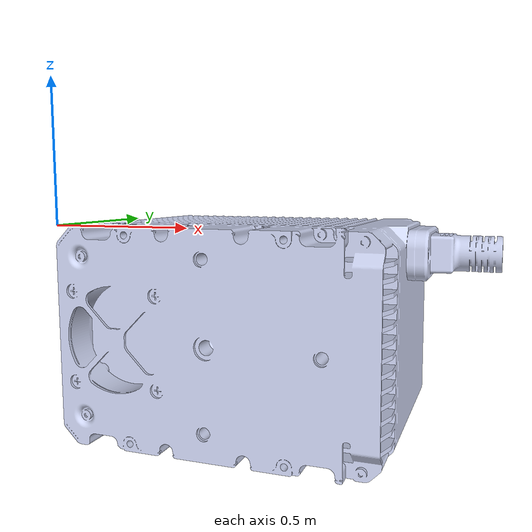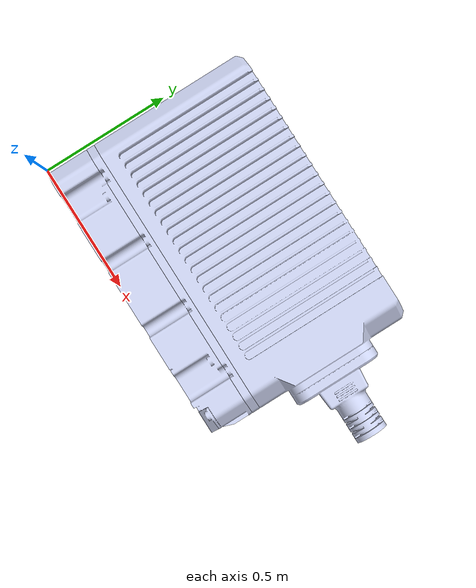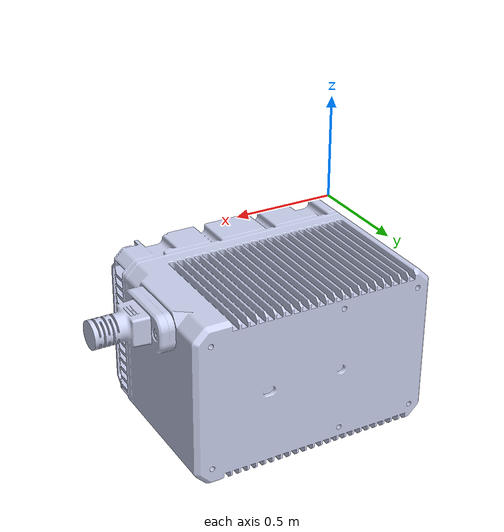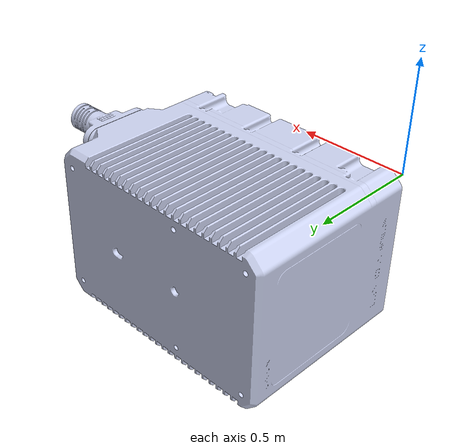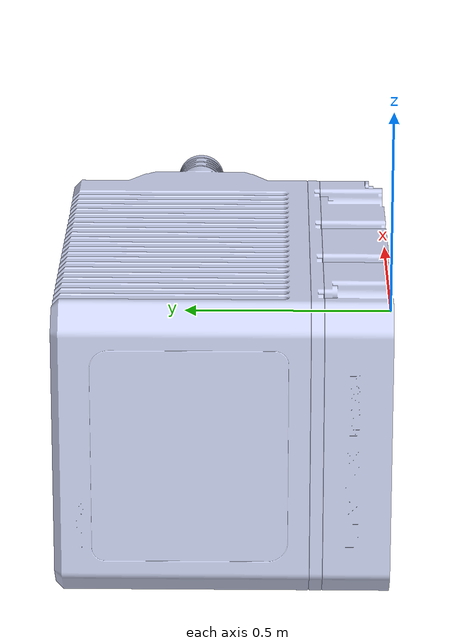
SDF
<?xml version="1.0" ?>
<sdf version="1.7">
  <model name="horizon">
    <pose>0 0 0 0 0 0</pose>
    <link name="horizon_link">
      <pose>0 0 0 0 0 0</pose>
      <inertial>
        <mass>0.02</mass>
        <inertia>
          <ixx>0.0005</ixx>
          <ixy>0</ixy>
          <ixz>0</ixz>
          <iyy>0.0005</iyy>
          <iyz>0</iyz>
          <izz>0.0008</izz>
        </inertia>
      </inertial>
      <visual name="visual">
        <geometry>
          <mesh>
            <uri>model://horizon/meshes/horizon.dae</uri>
            <scale>0.01 0.01 0.01</scale>
          </mesh>
        </geometry>
      </visual>
      <collision name="collision">
        <geometry>
          <cylinder>
            <radius>0.02</radius>
            <length>0.05</length>
          </cylinder>
        </geometry>
      </collision>

      <sensor name="horizon_imu" type="imu">
        <always_on>1</always_on>
        <update_rate>200</update_rate>
        <visualize>true</visualize>
        <imu>
          <topic>horizon/imu</topic>
        </imu>
      </sensor>

      <sensor name="horizon_lidar" type="gpu_lidar">
        <pose>0 0 0.04 0 0 0</pose>
        <always_on>true</always_on>
        <visualize>true</visualize>
        <update_rate>10</update_rate>
        <ray>
          <scan>
            <horizontal>
              <samples>1440</samples>
              <resolution>1.0</resolution>
              <min_angle>0</min_angle>
              <max_angle>6.2831852</max_angle>
            </horizontal>
          </scan>
          <range>
            <min>0.1</min>
            <max>30.0</max>
          </range>
        </ray>
      </sensor>

    </link>
  </model>
</sdf>
